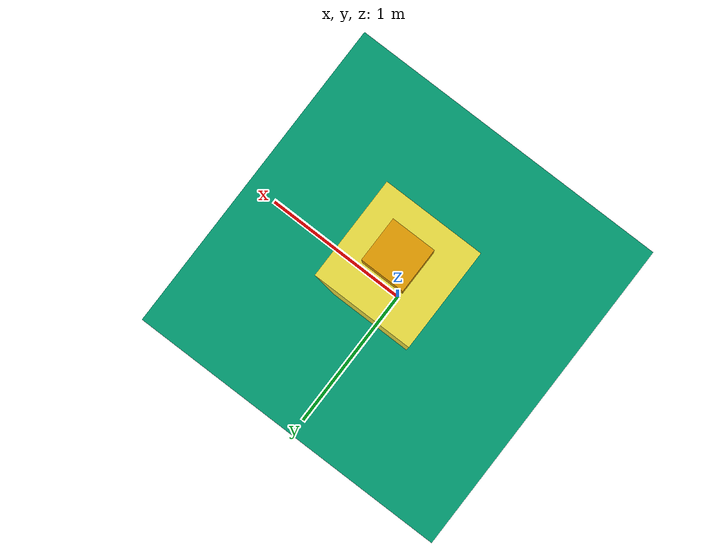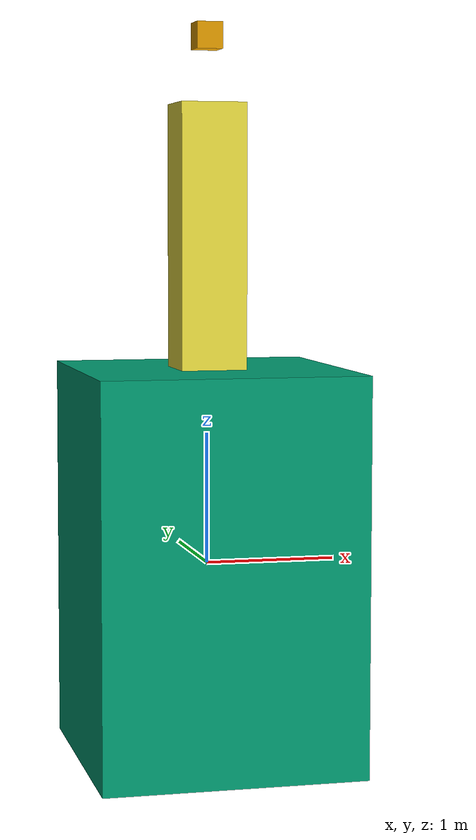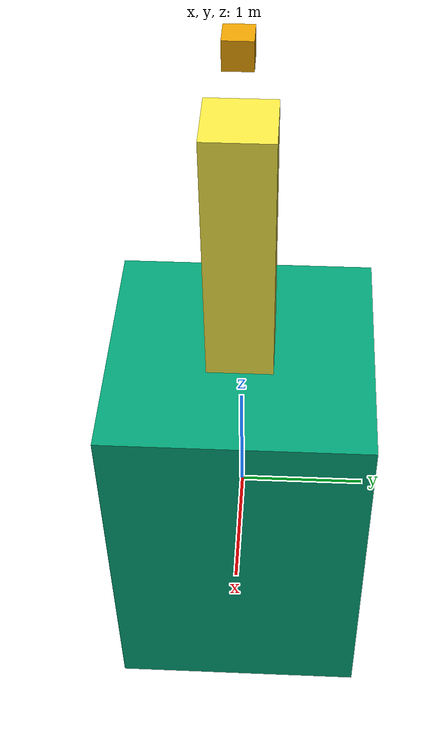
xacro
<?xml version="1.0"?>

<robot name="example" xmlns:xacro="http://www.ros.org/wiki/xacro">

    <xacro:include filename="$(find xacro_launch_argument)/urdf/param.urdf.xacro" />
    <xacro:include filename="$(find xacro_launch_argument)/urdf/sensor.urdf.xacro" />

    <link name="${ns_namespace_}odom">
        <origin xyz="0 0 0" rpy="0 0 0"/>
    </link>

    <joint name="${ns_namespace_}ref_link" type="fixed">
        <parent link="${ns_namespace_}odom"/>
        <child link="${ns_namespace_}chassis"/>
        <origin xyz="0 0 0" rpy="0 0 0"/>
    </joint>

    <!-- Chassis Link -->
    <link name="${ns_namespace_}chassis">
        <collision>
            <origin xyz="0 0 0" rpy="0 0 0"/>
            <geometry>
                <box size="2 2 3" />
            </geometry>
        </collision>

        <visual>
            <origin xyz="0 0 0" rpy="0 0 0"/>
            <geometry>
                <box size="2 2 3" />
            </geometry>
        </visual>

        <inertial>
            <origin xyz="0 0 0" rpy="0 0 0"/>
            <mass value="10"/>
            <inertia
                ixx="16.7" ixy="0.0" ixz="0.0"
                iyy="16.7" iyz="0.0"
                izz="16.7"/>
        </inertial>
    </link>

        <link name="${ns_namespace_}arm">
        <collision>
            <origin xyz="0 0 0" rpy="0 0 0"/>
            <geometry>
                <box size="0.5 0.5 3" />
            </geometry>
        </collision>

        <visual>
            <origin xyz="0 0 0" rpy="0 0 0"/>
            <geometry>
                <box size="0.5 0.5 3" />
            </geometry>
        </visual>

        <inertial>
            <origin xyz="0 0 0" rpy="0 0 0"/>
            <mass value="10"/>
            <inertia
                ixx="16.7" ixy="0.0" ixz="0.0"
                iyy="16.7" iyz="0.0"
                izz="16.7"/>
        </inertial>
    </link>

    <joint name="my_joint" type="revolute">
    <origin xyz="0 0 2" rpy="0 0 0"/>
    <parent link="${ns_namespace_}chassis"/>
    <child link="${ns_namespace_}arm"/>

    <dynamics damping="0.0" friction="0.0"/>
    <limit effort="30" velocity="1.0" lower="-0.3" upper="0.3" />
 </joint>

</robot>

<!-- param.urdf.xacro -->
<robot xmlns:xacro="http://www.ros.org/wiki/xacro">

    <!--  Argument from launch file  -->
    <xacro:arg name="ns_namespace" default=""/>

    <xacro:property name="name_space_pass" value="$(arg ns_namespace)"/>
    <xacro:if value="${name_space_pass != ''}">
        <xacro:property name="ns_namespace_" value="$(arg ns_namespace)_"/>
    </xacro:if>
    <xacro:if value="${name_space_pass == ''}">
        <xacro:property name="ns_namespace_" value=""/>
    </xacro:if>
</robot>

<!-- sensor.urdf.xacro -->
<robot xmlns:xacro="http://www.ros.org/wiki/xacro">

    <xacro:include filename="$(find xacro_launch_argument)/urdf/param.urdf.xacro" />

    <!-- Lidar -->
    <!-- Lidar Link -->
    <link name="${ns_namespace_}lidar">
        <collision>
            <origin xyz="0 0 0" rpy="0 0 0"/>
            <geometry>
                <box size="0.01 0.01 0.01" />
            </geometry>
        </collision>

        <visual>
            <origin xyz="0 0 0" rpy="0 0 0"/>
            <geometry>
                <box size="0.2 0.2 0.2" />
            </geometry>
        </visual>

        <inertial>
            <origin xyz="0 0 0" rpy="0 0 0"/>
            <mass value="1"/>
            <inertia
                ixx="1.67" ixy="0.0" ixz="0.0"
                iyy="1.67" iyz="0.0"
                izz="1.67"/>
        </inertial>
    </link>

    <joint name="lidar_joint" type="fixed">
        <origin xyz="0 0 2" rpy="0 0 0"/>
        <parent link="${ns_namespace_}arm"/>
        <child link="${ns_namespace_}lidar"/>
    </joint>

    <gazebo reference="${ns_namespace_}lidar">
        <sensor type="gpu_ray" name="sensor_gpu_ray">
            <pose>0 0 0 0 0 0</pose>
            <visualize>true</visualize>
            <always_on>true</always_on>
            <update_rate>4</update_rate>
            <ray>
                <scan>
                    <horizontal>
                        <samples>300</samples>
                        <resolution>1</resolution>
                        <min_angle>-1.570796</min_angle>
                        <max_angle>1.570796</max_angle>
                    </horizontal>
                </scan>
                <range>
                    <min>0.3</min>
                    <max>30.0</max>
                    <resolution>0.01</resolution>
                </range>
                <noise>
                    <type>gaussian</type>
                    <mean>0.0</mean>
                    <stddev>0.01</stddev>
                </noise>
            </ray>
            <plugin name="simple_lidar" filename="libgazebo_ros_ray_sensor.so">
                <ros>
                    <namespace>/gpu_ray</namespace>
                    <remapping>~/out:=laserscan</remapping>
                </ros>
                <output_type>sensor_msgs/LaserScan</output_type>
            </plugin>
        </sensor>
    </gazebo>

</robot>

    <!--  Argument from launch file  -->
